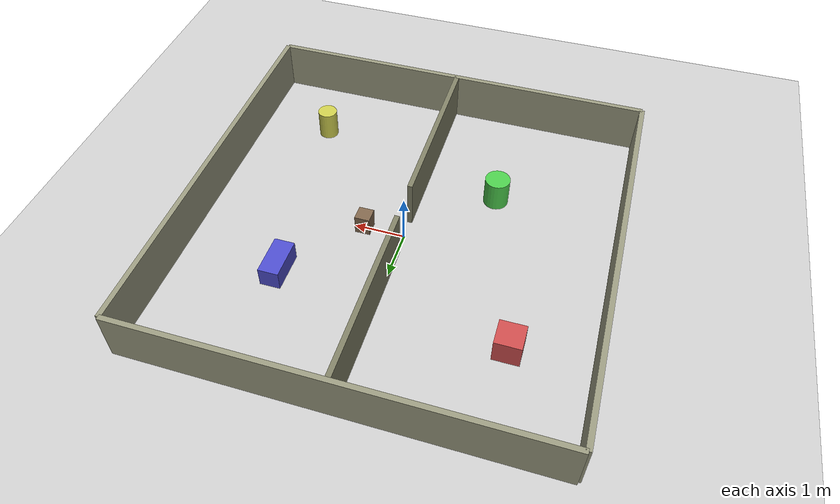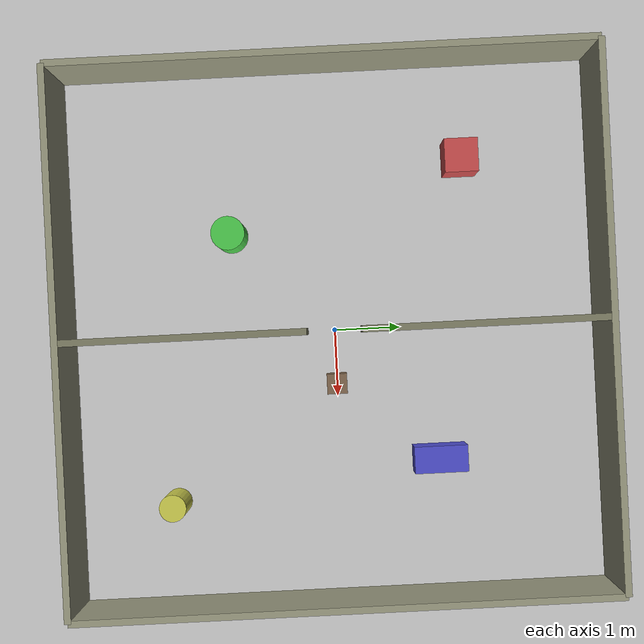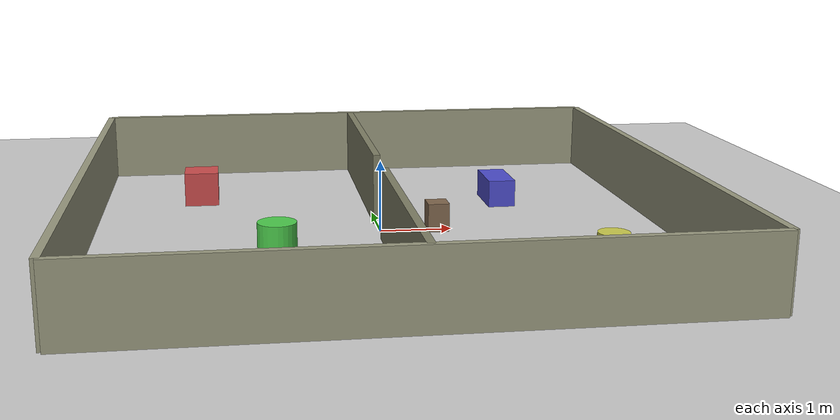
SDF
<?xml version="1.0" ?>
<sdf version="1.9">
  <world name="indoor_slam_test">

    <!-- Required system plugins -->
    <plugin filename="gz-sim-physics-system"
            name="gz::sim::systems::Physics"/>
    <plugin filename="gz-sim-user-commands-system"
            name="gz::sim::systems::UserCommands"/>
    <plugin filename="gz-sim-scene-broadcaster-system"
            name="gz::sim::systems::SceneBroadcaster"/>
    <plugin filename="gz-sim-sensors-system"
            name="gz::sim::systems::Sensors">
      <render_engine>ogre2</render_engine>
    </plugin>
    <plugin filename="gz-sim-imu-system"
            name="gz::sim::systems::Imu"/>
    <plugin filename="gz-sim-contact-system"
            name="gz::sim::systems::Contact"/>

    <!-- Physics: 1 ms step, real-time -->
    <physics name="1ms" type="ignored">
      <max_step_size>0.001</max_step_size>
      <real_time_factor>1.0</real_time_factor>
    </physics>

    <!-- Scene lighting -->
    <scene>
      <ambient>0.4 0.4 0.4 1</ambient>
      <background>0.7 0.7 0.7 1</background>
    </scene>

    <!-- Directional sun light -->
    <light type="directional" name="sun">
      <cast_shadows>true</cast_shadows>
      <pose>0 0 10 0 0 0</pose>
      <diffuse>0.8 0.8 0.8 1</diffuse>
      <specular>0.2 0.2 0.2 1</specular>
      <direction>-0.5 0.1 -0.9</direction>
    </light>

    <!-- Ground plane -->
    <model name="ground_plane">
      <static>true</static>
      <link name="link">
        <collision name="collision">
          <geometry>
            <plane>
              <normal>0 0 1</normal>
              <size>20 20</size>
            </plane>
          </geometry>
        </collision>
        <visual name="visual">
          <geometry>
            <plane>
              <normal>0 0 1</normal>
              <size>20 20</size>
            </plane>
          </geometry>
          <material>
            <ambient>0.8 0.8 0.8 1</ambient>
            <diffuse>0.8 0.8 0.8 1</diffuse>
          </material>
        </visual>
      </link>
    </model>

    <!-- Outer walls -->
    <!-- North wall (y=+4) -->
    <model name="wall_north">
      <static>true</static>
      <pose>0 4.0 0.5 0 0 0</pose>
      <link name="link">
        <collision name="collision">
          <geometry><box><size>8.0 0.1 1.0</size></box></geometry>
        </collision>
        <visual name="visual">
          <geometry><box><size>8.0 0.1 1.0</size></box></geometry>
          <material>
            <ambient>0.6 0.6 0.5 1</ambient>
            <diffuse>0.6 0.6 0.5 1</diffuse>
          </material>
        </visual>
      </link>
    </model>

    <!-- South wall (y=-4) -->
    <model name="wall_south">
      <static>true</static>
      <pose>0 -4.0 0.5 0 0 0</pose>
      <link name="link">
        <collision name="collision">
          <geometry><box><size>8.0 0.1 1.0</size></box></geometry>
        </collision>
        <visual name="visual">
          <geometry><box><size>8.0 0.1 1.0</size></box></geometry>
          <material>
            <ambient>0.6 0.6 0.5 1</ambient>
            <diffuse>0.6 0.6 0.5 1</diffuse>
          </material>
        </visual>
      </link>
    </model>

    <!-- West wall (x=-4) -->
    <model name="wall_west">
      <static>true</static>
      <pose>-4.0 0 0.5 0 0 0</pose>
      <link name="link">
        <collision name="collision">
          <geometry><box><size>0.1 8.0 1.0</size></box></geometry>
        </collision>
        <visual name="visual">
          <geometry><box><size>0.1 8.0 1.0</size></box></geometry>
          <material>
            <ambient>0.6 0.6 0.5 1</ambient>
            <diffuse>0.6 0.6 0.5 1</diffuse>
          </material>
        </visual>
      </link>
    </model>

    <!-- East wall (x=+4) -->
    <model name="wall_east">
      <static>true</static>
      <pose>4.0 0 0.5 0 0 0</pose>
      <link name="link">
        <collision name="collision">
          <geometry><box><size>0.1 8.0 1.0</size></box></geometry>
        </collision>
        <visual name="visual">
          <geometry><box><size>0.1 8.0 1.0</size></box></geometry>
          <material>
            <ambient>0.6 0.6 0.5 1</ambient>
            <diffuse>0.6 0.6 0.5 1</diffuse>
          </material>
        </visual>
      </link>
    </model>

    <!--
      Interior divider wall at x=0, with a 0.8 m door opening centered at y=0.
      Split into two segments: upper (y=+0.4 to y=+4) and lower (y=-4 to y=-0.4).
    -->
    <!-- Divider upper segment -->
    <model name="divider_upper">
      <static>true</static>
      <pose>0 2.2 0.5 0 0 0</pose>
      <link name="link">
        <collision name="collision">
          <geometry><box><size>0.1 3.6 1.0</size></box></geometry>
        </collision>
        <visual name="visual">
          <geometry><box><size>0.1 3.6 1.0</size></box></geometry>
          <material>
            <ambient>0.5 0.5 0.4 1</ambient>
            <diffuse>0.5 0.5 0.4 1</diffuse>
          </material>
        </visual>
      </link>
    </model>

    <!-- Divider lower segment -->
    <model name="divider_lower">
      <static>true</static>
      <pose>0 -2.2 0.5 0 0 0</pose>
      <link name="link">
        <collision name="collision">
          <geometry><box><size>0.1 3.6 1.0</size></box></geometry>
        </collision>
        <visual name="visual">
          <geometry><box><size>0.1 3.6 1.0</size></box></geometry>
          <material>
            <ambient>0.5 0.5 0.4 1</ambient>
            <diffuse>0.5 0.5 0.4 1</diffuse>
          </material>
        </visual>
      </link>
    </model>

    <!-- Obstacles in Room A (x < 0) -->
    <model name="obstacle_box_a1">
      <static>true</static>
      <pose>-2.5 2.0 0.25 0 0 0</pose>
      <link name="link">
        <collision name="collision">
          <geometry><box><size>0.5 0.5 0.5</size></box></geometry>
        </collision>
        <visual name="visual">
          <geometry><box><size>0.5 0.5 0.5</size></box></geometry>
          <material>
            <ambient>0.8 0.3 0.3 1</ambient>
            <diffuse>0.8 0.3 0.3 1</diffuse>
          </material>
        </visual>
      </link>
    </model>

    <model name="obstacle_cylinder_a1">
      <static>true</static>
      <pose>-1.5 -1.5 0.3 0 0 0</pose>
      <link name="link">
        <collision name="collision">
          <geometry><cylinder><radius>0.25</radius><length>0.6</length></cylinder></geometry>
        </collision>
        <visual name="visual">
          <geometry><cylinder><radius>0.25</radius><length>0.6</length></cylinder></geometry>
          <material>
            <ambient>0.3 0.8 0.3 1</ambient>
            <diffuse>0.3 0.8 0.3 1</diffuse>
          </material>
        </visual>
      </link>
    </model>

    <!-- Obstacles in Room B (x > 0) -->
    <model name="obstacle_box_b1">
      <static>true</static>
      <pose>2.0 1.5 0.2 0 0 0</pose>
      <link name="link">
        <collision name="collision">
          <geometry><box><size>0.4 0.8 0.4</size></box></geometry>
        </collision>
        <visual name="visual">
          <geometry><box><size>0.4 0.8 0.4</size></box></geometry>
          <material>
            <ambient>0.3 0.3 0.8 1</ambient>
            <diffuse>0.3 0.3 0.8 1</diffuse>
          </material>
        </visual>
      </link>
    </model>

    <model name="obstacle_cylinder_b1">
      <static>true</static>
      <pose>2.5 -2.5 0.3 0 0 0</pose>
      <link name="link">
        <collision name="collision">
          <geometry><cylinder><radius>0.2</radius><length>0.6</length></cylinder></geometry>
        </collision>
        <visual name="visual">
          <geometry><cylinder><radius>0.2</radius><length>0.6</length></cylinder></geometry>
          <material>
            <ambient>0.8 0.8 0.3 1</ambient>
            <diffuse>0.8 0.8 0.3 1</diffuse>
          </material>
        </visual>
      </link>
    </model>

    <!-- Small table-like obstacle near the door -->
    <model name="obstacle_table">
      <static>true</static>
      <pose>0.8 0 0.2 0 0 0</pose>
      <link name="link">
        <collision name="collision">
          <geometry><box><size>0.3 0.3 0.4</size></box></geometry>
        </collision>
        <visual name="visual">
          <geometry><box><size>0.3 0.3 0.4</size></box></geometry>
          <material>
            <ambient>0.5 0.4 0.3 1</ambient>
            <diffuse>0.5 0.4 0.3 1</diffuse>
          </material>
        </visual>
      </link>
    </model>

  </world>
</sdf>
